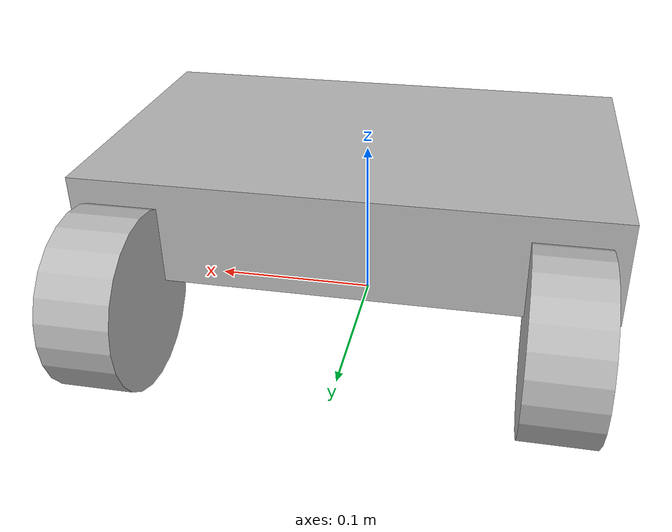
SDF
<?xml version='1.0'?>
<sdf version='1.6'>
  <model name='my_car'>
    <static>false</static>

    <!-- Model origin is at ground-contact center (base footprint) -->
    <link name='chassis'>
      <pose>0 0 0.08 0 0 0</pose>
      <inertial>
        <mass>1.5</mass>
        <inertia>
          <ixx>0.01</ixx>
          <ixy>0.0</ixy>
          <ixz>0.0</ixz>
          <iyy>0.01</iyy>
          <iyz>0.0</iyz>
          <izz>0.02</izz>
        </inertia>
      </inertial>
      <collision name='collision'>
        <geometry>
          <box>
            <size>0.30 0.18 0.06</size>
          </box>
        </geometry>
      </collision>
      <visual name='visual'>
        <geometry>
          <box>
            <size>0.30 0.18 0.06</size>
          </box>
        </geometry>
      </visual>

      <!-- Camera sensor attached to chassis -->
      <sensor type='camera' name='front_camera'>
        <pose>0.13 0 0.05 0 0.349 0</pose>
        <update_rate>30</update_rate>
        <camera name='front_camera'>
          <horizontal_fov>1.3962634</horizontal_fov>
          <image>
            <width>640</width>
            <height>480</height>
            <format>R8G8B8</format>
          </image>
          <clip>
            <near>0.02</near>
            <far>300</far>
          </clip>
        </camera>
        <plugin name='camera_controller' filename='libgazebo_ros_camera.so'>
          <frame_name>camera_optical_frame</frame_name>
          <image_topic_name>/camera/image_raw</image_topic_name>
          <camera_info_topic_name>/camera/camera_info</camera_info_topic_name>
        </plugin>
      </sensor>
    </link>

    <!-- Dummy link for camera optical frame naming consistency -->
    <link name='camera_optical_frame'>
      <pose>0.13 0 0.13 -1.5708 0 -1.5708</pose>
      <inertial>
        <mass>0.001</mass>
        <inertia>
          <ixx>1e-6</ixx>
          <ixy>0.0</ixy>
          <ixz>0.0</ixz>
          <iyy>1e-6</iyy>
          <iyz>0.0</iyz>
          <izz>1e-6</izz>
        </inertia>
      </inertial>
    </link>
    <joint name='camera_optical_joint' type='fixed'>
      <parent>chassis</parent>
      <child>camera_optical_frame</child>
    </joint>

    <!-- Steering wheel (optional but expected by ackermann plugin) -->
    <link name='steering_wheel'>
      <pose>0.10 0 0.16 0 0 0</pose>
      <inertial>
        <mass>0.01</mass>
        <inertia>
          <ixx>1e-6</ixx>
          <ixy>0.0</ixy>
          <ixz>0.0</ixz>
          <iyy>1e-6</iyy>
          <iyz>0.0</iyz>
          <izz>1e-6</izz>
        </inertia>
      </inertial>
    </link>
    <joint name='steering_joint' type='revolute'>
      <parent>chassis</parent>
      <child>steering_wheel</child>
      <pose>0.10 0 0.16 0 0 0</pose>
      <axis>
        <xyz>0 0 1</xyz>
        <limit>
          <lower>-7.85</lower>
          <upper>7.85</upper>
        </limit>
        <dynamics>
          <damping>1.0</damping>
        </dynamics>
      </axis>
    </joint>

    <!-- Wheels (radius 0.05, width 0.04); rotate cylinder so it spins about X -->
    <link name='rear_left_wheel'>
      <pose>-0.12 0.11 0.05 0 0 0</pose>
      <inertial>
        <mass>0.1</mass>
        <inertia>
          <ixx>0.0001</ixx>
          <ixy>0.0</ixy>
          <ixz>0.0</ixz>
          <iyy>0.0001</iyy>
          <iyz>0.0</iyz>
          <izz>0.0002</izz>
        </inertia>
      </inertial>
      <collision name='collision'>
        <pose>0 0 0 0 1.5708 0</pose>
        <geometry>
          <cylinder>
            <radius>0.05</radius>
            <length>0.04</length>
          </cylinder>
        </geometry>
        <surface>
          <friction>
            <ode>
              <mu>1.0</mu>
              <mu2>1.0</mu2>
            </ode>
          </friction>
        </surface>
      </collision>
      <visual name='visual'>
        <pose>0 0 0 0 1.5708 0</pose>
        <geometry>
          <cylinder>
            <radius>0.05</radius>
            <length>0.04</length>
          </cylinder>
        </geometry>
      </visual>
    </link>

    <joint name='rear_left_wheel_joint' type='revolute'>
      <parent>chassis</parent>
      <child>rear_left_wheel</child>
      <pose>-0.12 0.11 0.05 0 0 0</pose>
      <axis>
        <xyz>1 0 0</xyz>
        <dynamics>
          <friction>5.0</friction>
        </dynamics>
      </axis>
    </joint>

    <link name='rear_right_wheel'>
      <pose>-0.12 -0.11 0.05 0 0 0</pose>
      <inertial>
        <mass>0.1</mass>
        <inertia>
          <ixx>0.0001</ixx>
          <ixy>0.0</ixy>
          <ixz>0.0</ixz>
          <iyy>0.0001</iyy>
          <iyz>0.0</iyz>
          <izz>0.0002</izz>
        </inertia>
      </inertial>
      <collision name='collision'>
        <pose>0 0 0 0 1.5708 0</pose>
        <geometry>
          <cylinder>
            <radius>0.05</radius>
            <length>0.04</length>
          </cylinder>
        </geometry>
        <surface>
          <friction>
            <ode>
              <mu>1.0</mu>
              <mu2>1.0</mu2>
            </ode>
          </friction>
        </surface>
      </collision>
      <visual name='visual'>
        <pose>0 0 0 0 1.5708 0</pose>
        <geometry>
          <cylinder>
            <radius>0.05</radius>
            <length>0.04</length>
          </cylinder>
        </geometry>
      </visual>
    </link>

    <joint name='rear_right_wheel_joint' type='revolute'>
      <parent>chassis</parent>
      <child>rear_right_wheel</child>
      <pose>-0.12 -0.11 0.05 0 0 0</pose>
      <axis>
        <xyz>1 0 0</xyz>
        <dynamics>
          <friction>5.0</friction>
        </dynamics>
      </axis>
    </joint>

    <!-- Front wheels use universal joints (steer about Z, roll about X) like the official demo -->
    <link name='front_left_wheel'>
      <pose>0.12 0.11 0.05 0 0 0</pose>
      <inertial>
        <mass>0.1</mass>
        <inertia>
          <ixx>0.0001</ixx>
          <ixy>0.0</ixy>
          <ixz>0.0</ixz>
          <iyy>0.0001</iyy>
          <iyz>0.0</iyz>
          <izz>0.0002</izz>
        </inertia>
      </inertial>
      <collision name='collision'>
        <pose>0 0 0 0 1.5708 0</pose>
        <geometry>
          <cylinder>
            <radius>0.05</radius>
            <length>0.04</length>
          </cylinder>
        </geometry>
        <surface>
          <friction>
            <ode>
              <mu>0.5</mu>
              <mu2>0.5</mu2>
            </ode>
          </friction>
        </surface>
      </collision>
      <visual name='visual'>
        <pose>0 0 0 0 1.5708 0</pose>
        <geometry>
          <cylinder>
            <radius>0.05</radius>
            <length>0.04</length>
          </cylinder>
        </geometry>
      </visual>
    </link>

    <joint name='front_left_combined_joint' type='universal'>
      <parent>chassis</parent>
      <child>front_left_wheel</child>
      <pose>0.12 0.11 0.05 0 0 0</pose>
      <axis>
        <xyz>0 0 1</xyz>
        <limit>
          <lower>-0.6</lower>
          <upper>0.6</upper>
        </limit>
      </axis>
      <axis2>
        <xyz>1 0 0</xyz>
        <dynamics>
          <friction>5.0</friction>
        </dynamics>
      </axis2>
    </joint>

    <link name='front_right_wheel'>
      <pose>0.12 -0.11 0.05 0 0 0</pose>
      <inertial>
        <mass>0.1</mass>
        <inertia>
          <ixx>0.0001</ixx>
          <ixy>0.0</ixy>
          <ixz>0.0</ixz>
          <iyy>0.0001</iyy>
          <iyz>0.0</iyz>
          <izz>0.0002</izz>
        </inertia>
      </inertial>
      <collision name='collision'>
        <pose>0 0 0 0 1.5708 0</pose>
        <geometry>
          <cylinder>
            <radius>0.05</radius>
            <length>0.04</length>
          </cylinder>
        </geometry>
        <surface>
          <friction>
            <ode>
              <mu>0.5</mu>
              <mu2>0.5</mu2>
            </ode>
          </friction>
        </surface>
      </collision>
      <visual name='visual'>
        <pose>0 0 0 0 1.5708 0</pose>
        <geometry>
          <cylinder>
            <radius>0.05</radius>
            <length>0.04</length>
          </cylinder>
        </geometry>
      </visual>
    </link>

    <joint name='front_right_combined_joint' type='universal'>
      <parent>chassis</parent>
      <child>front_right_wheel</child>
      <pose>0.12 -0.11 0.05 0 0 0</pose>
      <axis>
        <xyz>0 0 1</xyz>
        <limit>
          <lower>-0.6</lower>
          <upper>0.6</upper>
        </limit>
      </axis>
      <axis2>
        <xyz>1 0 0</xyz>
        <dynamics>
          <friction>5.0</friction>
        </dynamics>
      </axis2>
    </joint>

  </model>
</sdf>
